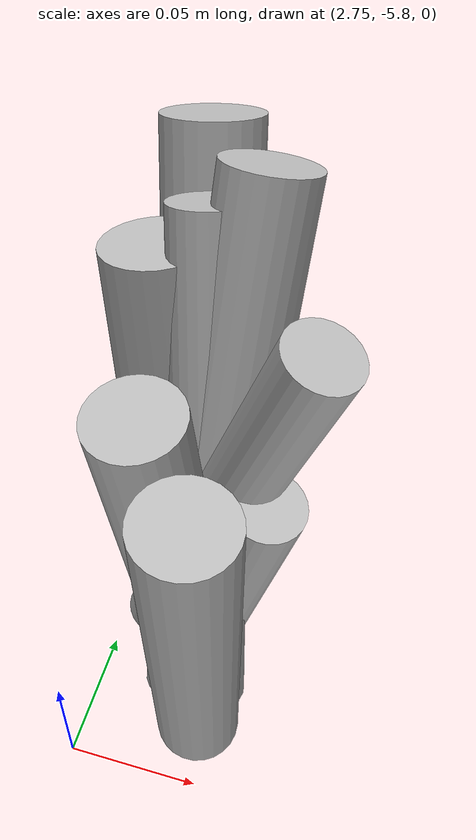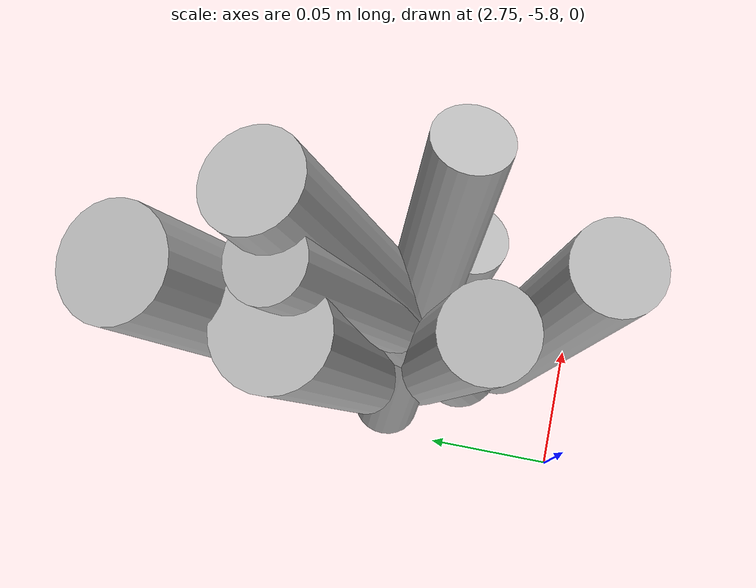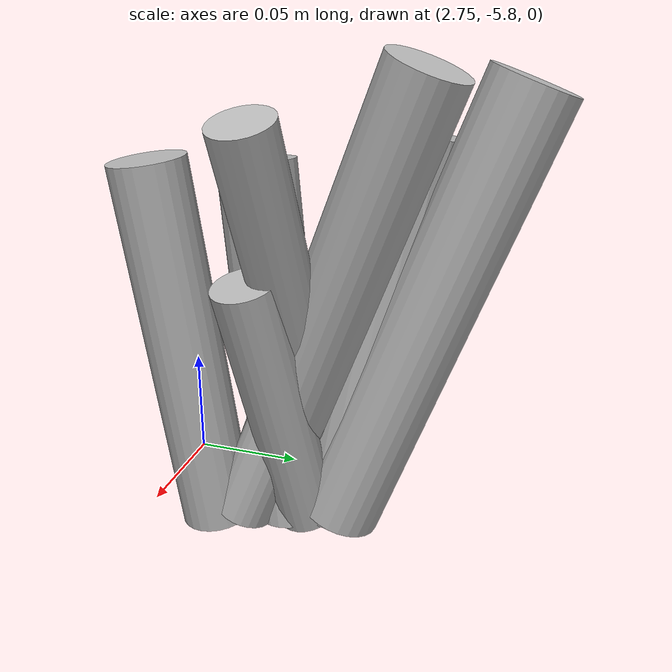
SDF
<sdf version="1.6">
 <world name="default">
  <model name="tussocks">
   <static>true</static>
   <link name="tuft155_0">
    <pose>2.7970 -5.7391 0.0561 0 0.2498 5.7438</pose>
    <visual name="tuft155_0_v">
     <geometry><cylinder><radius>0.0138</radius><length>0.1220</length></cylinder></geometry>
     <material>
      <script>
       <uri>model://bushfire/materials/scripts</uri>
       <uri>model://bushfire/materials/textures</uri>
       <name>Bushfire/Tussock</name>
      </script>
     </material>
    </visual>
   </link>
   <link name="tuft155_1">
    <pose>2.7653 -5.7054 0.0812 0 0.2004 2.2219</pose>
    <visual name="tuft155_1_v">
     <geometry><cylinder><radius>0.0196</radius><length>0.1766</length></cylinder></geometry>
     <material>
      <script>
       <uri>model://bushfire/materials/scripts</uri>
       <uri>model://bushfire/materials/textures</uri>
       <name>Bushfire/Foliage2</name>
      </script>
     </material>
    </visual>
   </link>
   <link name="tuft155_2">
    <pose>2.7948 -5.7821 0.0764 0 0.1248 4.8893</pose>
    <visual name="tuft155_2_v">
     <geometry><cylinder><radius>0.0164</radius><length>0.1660</length></cylinder></geometry>
     <material>
      <script>
       <uri>model://bushfire/materials/scripts</uri>
       <uri>model://bushfire/materials/textures</uri>
       <name>Bushfire/Tussock</name>
      </script>
     </material>
    </visual>
   </link>
   <link name="tuft155_3">
    <pose>2.7714 -5.6818 0.0945 0 0.3650 1.8492</pose>
    <visual name="tuft155_3_v">
     <geometry><cylinder><radius>0.0187</radius><length>0.2054</length></cylinder></geometry>
     <material>
      <script>
       <uri>model://bushfire/materials/scripts</uri>
       <uri>model://bushfire/materials/textures</uri>
       <name>Bushfire/Foliage2</name>
      </script>
     </material>
    </visual>
   </link>
   <link name="tuft155_4">
    <pose>2.7756 -5.7475 0.0746 0 0.1365 4.1106</pose>
    <visual name="tuft155_4_v">
     <geometry><cylinder><radius>0.0170</radius><length>0.1622</length></cylinder></geometry>
     <material>
      <script>
       <uri>model://bushfire/materials/scripts</uri>
       <uri>model://bushfire/materials/textures</uri>
       <name>Bushfire/Tussock</name>
      </script>
     </material>
    </visual>
   </link>
   <link name="tuft155_5">
    <pose>2.7830 -5.7233 0.0920 0 0.3821 1.8779</pose>
    <visual name="tuft155_5_v">
     <geometry><cylinder><radius>0.0140</radius><length>0.1999</length></cylinder></geometry>
     <material>
      <script>
       <uri>model://bushfire/materials/scripts</uri>
       <uri>model://bushfire/materials/textures</uri>
       <name>Bushfire/Foliage2</name>
      </script>
     </material>
    </visual>
   </link>
   <link name="tuft155_6">
    <pose>2.7913 -5.7336 0.0884 0 0.3224 6.0645</pose>
    <visual name="tuft155_6_v">
     <geometry><cylinder><radius>0.0134</radius><length>0.1923</length></cylinder></geometry>
     <material>
      <script>
       <uri>model://bushfire/materials/scripts</uri>
       <uri>model://bushfire/materials/textures</uri>
       <name>Bushfire/Foliage2</name>
      </script>
     </material>
    </visual>
   </link>
   <link name="tuft155_7">
    <pose>2.7870 -5.7190 0.0980 0 0.3654 1.4866</pose>
    <visual name="tuft155_7_v">
     <geometry><cylinder><radius>0.0171</radius><length>0.2131</length></cylinder></geometry>
     <material>
      <script>
       <uri>model://bushfire/materials/scripts</uri>
       <uri>model://bushfire/materials/textures</uri>
       <name>Bushfire/Tussock</name>
      </script>
     </material>
    </visual>
   </link>
  </model>
 </world>
</sdf>
